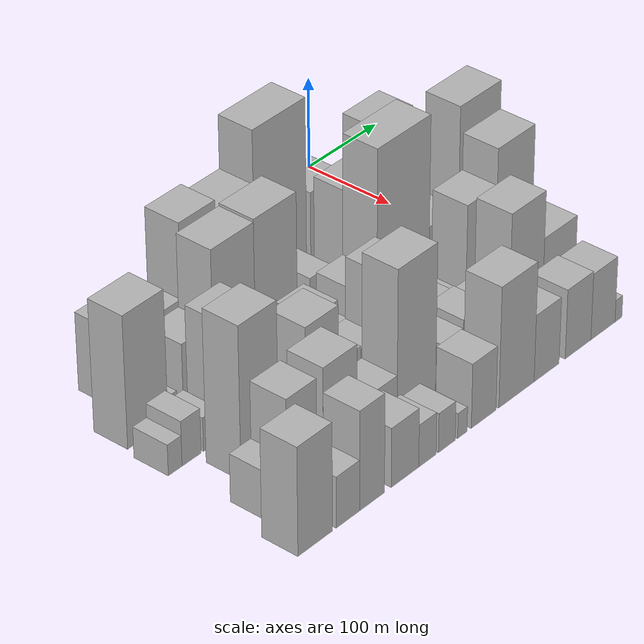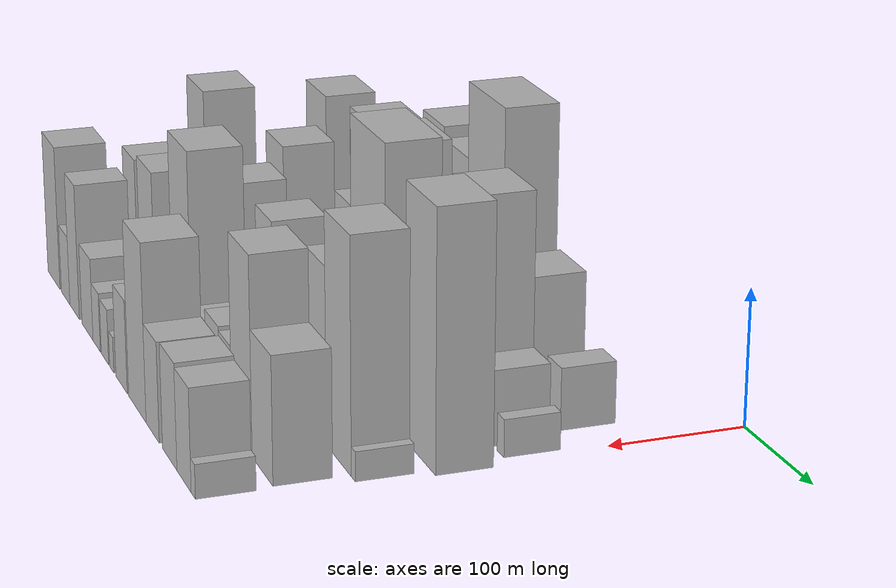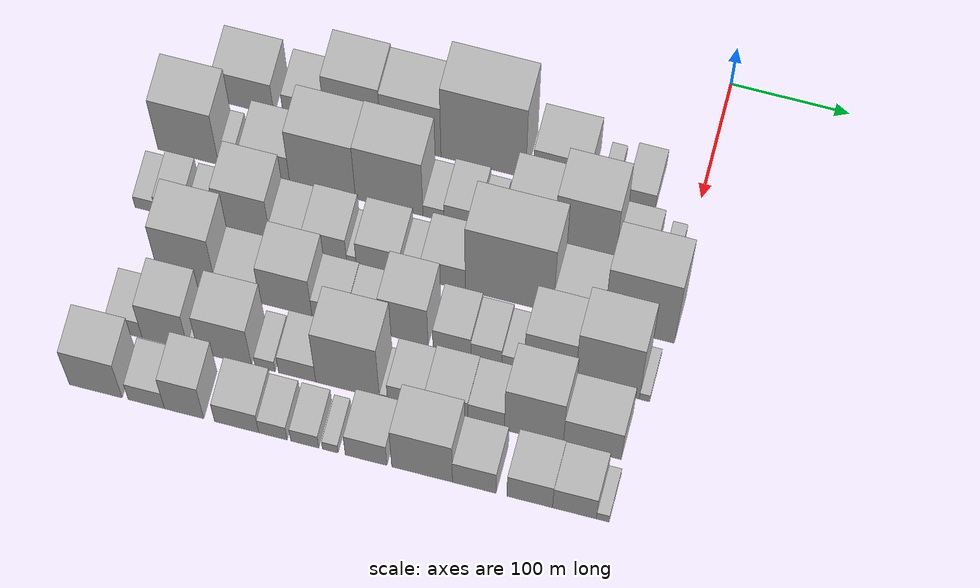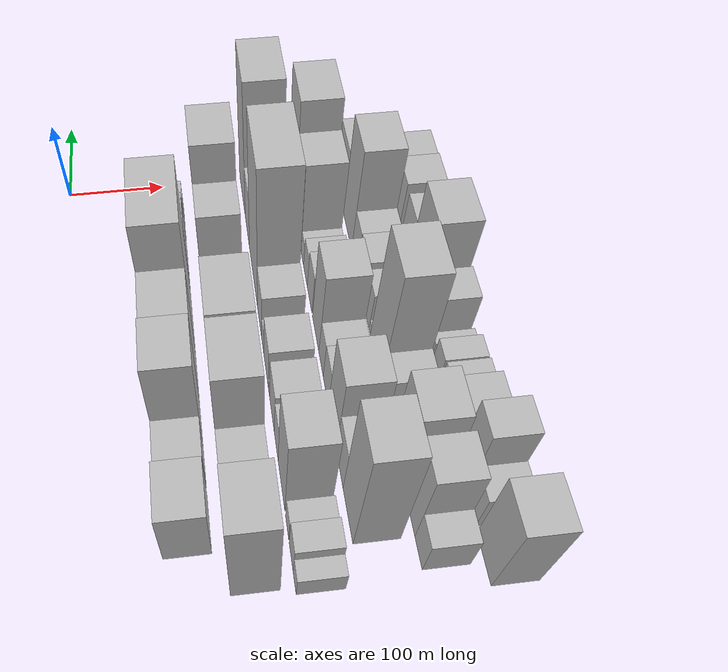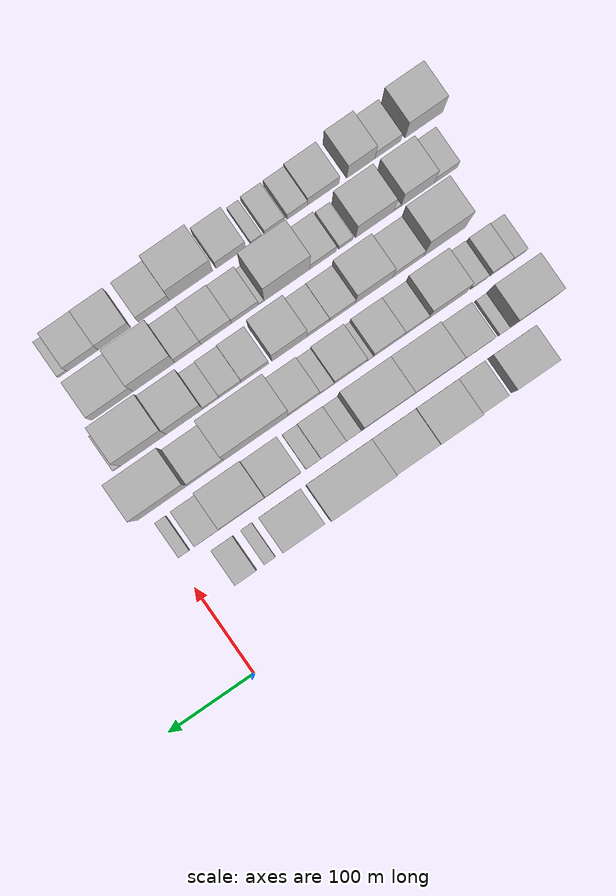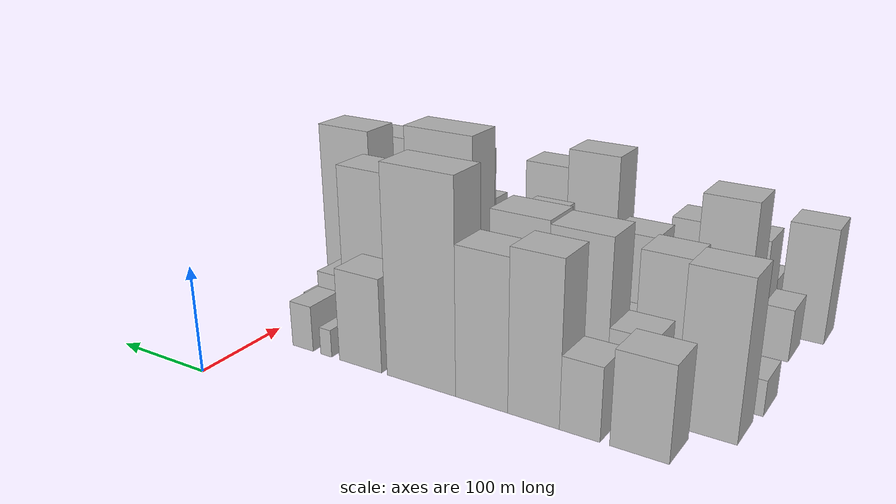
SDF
<sdf version="1.6">
 <world name="default">
  <model name="building_15">
   <static>1</static>
   <pose>100.0000 -380.6242 0 0.000000 0.000000 0.000000</pose>
   <link name="link">
    <pose>0 0 42.00 0 0 0</pose>
    <collision name="collision"><geometry><box><size>40.0000 48.9257 84.0000</size></box></geometry></collision>
    <visual name="visual">
     <cast_shadows>0</cast_shadows>
     <geometry><box><size>40.0000 48.9257 84.0000</size></box></geometry>
     <material>
      <script>
       <uri>model://HANNAS_wall/materials/scripts</uri>
       <uri>model://HANNAS_wall/materials/textures</uri>
       <name>vrc/HANNAS_wall</name>
      </script>
     </material>
    </visual>
   </link>
  </model>
  <model name="building_16">
   <static>1</static>
   <pose>100.0000 -330.4229 0 0.000000 0.000000 0.000000</pose>
   <link name="link">
    <pose>0 0 33.00 0 0 0</pose>
    <collision name="collision"><geometry><box><size>40.0000 35.4769 66.0000</size></box></geometry></collision>
    <visual name="visual">
     <cast_shadows>0</cast_shadows>
     <geometry><box><size>40.0000 35.4769 66.0000</size></box></geometry>
     <material>
      <script>
       <uri>model://HANNAS_wall/materials/scripts</uri>
       <uri>model://HANNAS_wall/materials/textures</uri>
       <name>vrc/HANNAS_wall</name>
      </script>
     </material>
    </visual>
   </link>
  </model>
  <model name="building_17">
   <static>1</static>
   <pose>100.0000 -289.0491 0 0.000000 0.000000 0.000000</pose>
   <link name="link">
    <pose>0 0 73.50 0 0 0</pose>
    <collision name="collision"><geometry><box><size>40.0000 47.2708 147.0000</size></box></geometry></collision>
    <visual name="visual">
     <cast_shadows>0</cast_shadows>
     <geometry><box><size>40.0000 47.2708 147.0000</size></box></geometry>
     <material>
      <script>
       <uri>model://HANNAS_wall/materials/scripts</uri>
       <uri>model://HANNAS_wall/materials/textures</uri>
       <name>vrc/HANNAS_wall</name>
      </script>
     </material>
    </visual>
   </link>
  </model>
  <model name="building_18">
   <static>1</static>
   <pose>100.0000 -240.0989 0 0.000000 0.000000 0.000000</pose>
   <link name="link">
    <pose>0 0 69.00 0 0 0</pose>
    <collision name="collision"><geometry><box><size>40.0000 50.6296 138.0000</size></box></geometry></collision>
    <visual name="visual">
     <cast_shadows>0</cast_shadows>
     <geometry><box><size>40.0000 50.6296 138.0000</size></box></geometry>
     <material>
      <script>
       <uri>model://HANNAS_wall/materials/scripts</uri>
       <uri>model://HANNAS_wall/materials/textures</uri>
       <name>vrc/HANNAS_wall</name>
      </script>
     </material>
    </visual>
   </link>
  </model>
  <model name="building_19">
   <static>1</static>
   <pose>100.0000 -179.0395 0 0.000000 0.000000 0.000000</pose>
   <link name="link">
    <pose>0 0 97.50 0 0 0</pose>
    <collision name="collision"><geometry><box><size>40.0000 71.4891 195.0000</size></box></geometry></collision>
    <visual name="visual">
     <cast_shadows>0</cast_shadows>
     <geometry><box><size>40.0000 71.4891 195.0000</size></box></geometry>
     <material>
      <script>
       <uri>model://HANNAS_wall/materials/scripts</uri>
       <uri>model://HANNAS_wall/materials/textures</uri>
       <name>vrc/HANNAS_wall</name>
      </script>
     </material>
    </visual>
   </link>
  </model>
  <model name="building_20">
   <static>1</static>
   <pose>100.0000 -113.5583 0 0.000000 0.000000 0.000000</pose>
   <link name="link">
    <pose>0 0 45.00 0 0 0</pose>
    <collision name="collision"><geometry><box><size>40.0000 47.4733 90.0000</size></box></geometry></collision>
    <visual name="visual">
     <cast_shadows>0</cast_shadows>
     <geometry><box><size>40.0000 47.4733 90.0000</size></box></geometry>
     <material>
      <script>
       <uri>model://HANNAS_wall/materials/scripts</uri>
       <uri>model://HANNAS_wall/materials/textures</uri>
       <name>vrc/HANNAS_wall</name>
      </script>
     </material>
    </visual>
   </link>
  </model>
  <model name="building_21">
   <static>1</static>
   <pose>100.0000 -74.3829 0 0.000000 0.000000 0.000000</pose>
   <link name="link">
    <pose>0 0 13.50 0 0 0</pose>
    <collision name="collision"><geometry><box><size>40.0000 12.8774 27.0000</size></box></geometry></collision>
    <visual name="visual">
     <cast_shadows>0</cast_shadows>
     <geometry><box><size>40.0000 12.8774 27.0000</size></box></geometry>
     <material>
      <script>
       <uri>model://HANNAS_wall/materials/scripts</uri>
       <uri>model://HANNAS_wall/materials/textures</uri>
       <name>vrc/HANNAS_wall</name>
      </script>
     </material>
    </visual>
   </link>
  </model>
  <model name="building_22">
   <static>1</static>
   <pose>100.0000 -46.6453 0 0.000000 0.000000 0.000000</pose>
   <link name="link">
    <pose>0 0 22.50 0 0 0</pose>
    <collision name="collision"><geometry><box><size>40.0000 24.5978 45.0000</size></box></geometry></collision>
    <visual name="visual">
     <cast_shadows>0</cast_shadows>
     <geometry><box><size>40.0000 24.5978 45.0000</size></box></geometry>
     <material>
      <script>
       <uri>model://HANNAS_wall/materials/scripts</uri>
       <uri>model://HANNAS_wall/materials/textures</uri>
       <name>vrc/HANNAS_wall</name>
      </script>
     </material>
    </visual>
   </link>
  </model>
  <model name="building_56">
   <static>1</static>
   <pose>152.0000 -414.7231 0 0.000000 0.000000 0.000000</pose>
   <link name="link">
    <pose>0 0 70.50 0 0 0</pose>
    <collision name="collision"><geometry><box><size>40.0000 51.4436 141.0000</size></box></geometry></collision>
    <visual name="visual">
     <cast_shadows>0</cast_shadows>
     <geometry><box><size>40.0000 51.4436 141.0000</size></box></geometry>
     <material>
      <script>
       <uri>model://HANNAS_wall/materials/scripts</uri>
       <uri>model://HANNAS_wall/materials/textures</uri>
       <name>vrc/HANNAS_wall</name>
      </script>
     </material>
    </visual>
   </link>
  </model>
  <model name="building_57">
   <static>1</static>
   <pose>152.0000 -382.9502 0 0.000000 0.000000 0.000000</pose>
   <link name="link">
    <pose>0 0 13.50 0 0 0</pose>
    <collision name="collision"><geometry><box><size>40.0000 12.1022 27.0000</size></box></geometry></collision>
    <visual name="visual">
     <cast_shadows>0</cast_shadows>
     <geometry><box><size>40.0000 12.1022 27.0000</size></box></geometry>
     <material>
      <script>
       <uri>model://HANNAS_wall/materials/scripts</uri>
       <uri>model://HANNAS_wall/materials/textures</uri>
       <name>vrc/HANNAS_wall</name>
      </script>
     </material>
    </visual>
   </link>
  </model>
  <model name="building_58">
   <static>1</static>
   <pose>152.0000 -348.8538 0 0.000000 0.000000 0.000000</pose>
   <link name="link">
    <pose>0 0 36.00 0 0 0</pose>
    <collision name="collision"><geometry><box><size>40.0000 40.0906 72.0000</size></box></geometry></collision>
    <visual name="visual">
     <cast_shadows>0</cast_shadows>
     <geometry><box><size>40.0000 40.0906 72.0000</size></box></geometry>
     <material>
      <script>
       <uri>model://HANNAS_wall/materials/scripts</uri>
       <uri>model://HANNAS_wall/materials/textures</uri>
       <name>vrc/HANNAS_wall</name>
      </script>
     </material>
    </visual>
   </link>
  </model>
  <model name="building_59">
   <static>1</static>
   <pose>152.0000 -300.9903 0 0.000000 0.000000 0.000000</pose>
   <link name="link">
    <pose>0 0 75.00 0 0 0</pose>
    <collision name="collision"><geometry><box><size>40.0000 55.6364 150.0000</size></box></geometry></collision>
    <visual name="visual">
     <cast_shadows>0</cast_shadows>
     <geometry><box><size>40.0000 55.6364 150.0000</size></box></geometry>
     <material>
      <script>
       <uri>model://HANNAS_wall/materials/scripts</uri>
       <uri>model://HANNAS_wall/materials/textures</uri>
       <name>vrc/HANNAS_wall</name>
      </script>
     </material>
    </visual>
   </link>
  </model>
  <model name="building_60">
   <static>1</static>
   <pose>152.0000 -244.7220 0 0.000000 0.000000 0.000000</pose>
   <link name="link">
    <pose>0 0 76.50 0 0 0</pose>
    <collision name="collision"><geometry><box><size>40.0000 56.9002 153.0000</size></box></geometry></collision>
    <visual name="visual">
     <cast_shadows>0</cast_shadows>
     <geometry><box><size>40.0000 56.9002 153.0000</size></box></geometry>
     <material>
      <script>
       <uri>model://HANNAS_wall/materials/scripts</uri>
       <uri>model://HANNAS_wall/materials/textures</uri>
       <name>vrc/HANNAS_wall</name>
      </script>
     </material>
    </visual>
   </link>
  </model>
  <model name="building_61">
   <static>1</static>
   <pose>152.0000 -207.4695 0 0.000000 0.000000 0.000000</pose>
   <link name="link">
    <pose>0 0 16.50 0 0 0</pose>
    <collision name="collision"><geometry><box><size>40.0000 17.6048 33.0000</size></box></geometry></collision>
    <visual name="visual">
     <cast_shadows>0</cast_shadows>
     <geometry><box><size>40.0000 17.6048 33.0000</size></box></geometry>
     <material>
      <script>
       <uri>model://HANNAS_wall/materials/scripts</uri>
       <uri>model://HANNAS_wall/materials/textures</uri>
       <name>vrc/HANNAS_wall</name>
      </script>
     </material>
    </visual>
   </link>
  </model>
  <model name="building_62">
   <static>1</static>
   <pose>152.0000 -184.0810 0 0.000000 0.000000 0.000000</pose>
   <link name="link">
    <pose>0 0 25.50 0 0 0</pose>
    <collision name="collision"><geometry><box><size>40.0000 29.1721 51.0000</size></box></geometry></collision>
    <visual name="visual">
     <cast_shadows>0</cast_shadows>
     <geometry><box><size>40.0000 29.1721 51.0000</size></box></geometry>
     <material>
      <script>
       <uri>model://HANNAS_wall/materials/scripts</uri>
       <uri>model://HANNAS_wall/materials/textures</uri>
       <name>vrc/HANNAS_wall</name>
      </script>
     </material>
    </visual>
   </link>
  </model>
  <model name="building_63">
   <static>1</static>
   <pose>152.0000 -160.8736 0 0.000000 0.000000 0.000000</pose>
   <link name="link">
    <pose>0 0 15.00 0 0 0</pose>
    <collision name="collision"><geometry><box><size>40.0000 17.2428 30.0000</size></box></geometry></collision>
    <visual name="visual">
     <cast_shadows>0</cast_shadows>
     <geometry><box><size>40.0000 17.2428 30.0000</size></box></geometry>
     <material>
      <script>
       <uri>model://HANNAS_wall/materials/scripts</uri>
       <uri>model://HANNAS_wall/materials/textures</uri>
       <name>vrc/HANNAS_wall</name>
      </script>
     </material>
    </visual>
   </link>
  </model>
  <model name="building_64">
   <static>1</static>
   <pose>152.0000 -126.0662 0 0.000000 0.000000 0.000000</pose>
   <link name="link">
    <pose>0 0 58.50 0 0 0</pose>
    <collision name="collision"><geometry><box><size>40.0000 40.3719 117.0000</size></box></geometry></collision>
    <visual name="visual">
     <cast_shadows>0</cast_shadows>
     <geometry><box><size>40.0000 40.3719 117.0000</size></box></geometry>
     <material>
      <script>
       <uri>model://HANNAS_wall/materials/scripts</uri>
       <uri>model://HANNAS_wall/materials/textures</uri>
       <name>vrc/HANNAS_wall</name>
      </script>
     </material>
    </visual>
   </link>
  </model>
  <model name="building_65">
   <static>1</static>
   <pose>152.0000 -80.3575 0 0.000000 0.000000 0.000000</pose>
   <link name="link">
    <pose>0 0 82.50 0 0 0</pose>
    <collision name="collision"><geometry><box><size>40.0000 51.0455 165.0000</size></box></geometry></collision>
    <visual name="visual">
     <cast_shadows>0</cast_shadows>
     <geometry><box><size>40.0000 51.0455 165.0000</size></box></geometry>
     <material>
      <script>
       <uri>model://HANNAS_wall/materials/scripts</uri>
       <uri>model://HANNAS_wall/materials/textures</uri>
       <name>vrc/HANNAS_wall</name>
      </script>
     </material>
    </visual>
   </link>
  </model>
  <model name="building_66">
   <static>1</static>
   <pose>152.0000 -39.4649 0 0.000000 0.000000 0.000000</pose>
   <link name="link">
    <pose>0 0 27.00 0 0 0</pose>
    <collision name="collision"><geometry><box><size>40.0000 30.7397 54.0000</size></box></geometry></collision>
    <visual name="visual">
     <cast_shadows>0</cast_shadows>
     <geometry><box><size>40.0000 30.7397 54.0000</size></box></geometry>
     <material>
      <script>
       <uri>model://HANNAS_wall/materials/scripts</uri>
       <uri>model://HANNAS_wall/materials/textures</uri>
       <name>vrc/HANNAS_wall</name>
      </script>
     </material>
    </visual>
   </link>
  </model>
  <model name="building_67">
   <static>1</static>
   <pose>152.0000 -10.9223 0 0.000000 0.000000 0.000000</pose>
   <link name="link">
    <pose>0 0 13.50 0 0 0</pose>
    <collision name="collision"><geometry><box><size>40.0000 12.3455 27.0000</size></box></geometry></collision>
    <visual name="visual">
     <cast_shadows>0</cast_shadows>
     <geometry><box><size>40.0000 12.3455 27.0000</size></box></geometry>
     <material>
      <script>
       <uri>model://HANNAS_wall/materials/scripts</uri>
       <uri>model://HANNAS_wall/materials/textures</uri>
       <name>vrc/HANNAS_wall</name>
      </script>
     </material>
    </visual>
   </link>
  </model>
  <model name="building_103">
   <static>1</static>
   <pose>204.0000 -436.7140 0 0.000000 0.000000 0.000000</pose>
   <link name="link">
    <pose>0 0 16.50 0 0 0</pose>
    <collision name="collision"><geometry><box><size>40.0000 17.4519 33.0000</size></box></geometry></collision>
    <visual name="visual">
     <cast_shadows>0</cast_shadows>
     <geometry><box><size>40.0000 17.4519 33.0000</size></box></geometry>
     <material>
      <script>
       <uri>model://HANNAS_wall/materials/scripts</uri>
       <uri>model://HANNAS_wall/materials/textures</uri>
       <name>vrc/HANNAS_wall</name>
      </script>
     </material>
    </visual>
   </link>
  </model>
  <model name="building_104">
   <static>1</static>
   <pose>204.0000 -415.7940 0 0.000000 0.000000 0.000000</pose>
   <link name="link">
    <pose>0 0 24.00 0 0 0</pose>
    <collision name="collision"><geometry><box><size>40.0000 24.3881 48.0000</size></box></geometry></collision>
    <visual name="visual">
     <cast_shadows>0</cast_shadows>
     <geometry><box><size>40.0000 24.3881 48.0000</size></box></geometry>
     <material>
      <script>
       <uri>model://HANNAS_wall/materials/scripts</uri>
       <uri>model://HANNAS_wall/materials/textures</uri>
       <name>vrc/HANNAS_wall</name>
      </script>
     </material>
    </visual>
   </link>
  </model>
  <model name="building_105">
   <static>1</static>
   <pose>204.0000 -390.7749 0 0.000000 0.000000 0.000000</pose>
   <link name="link">
    <pose>0 0 18.00 0 0 0</pose>
    <collision name="collision"><geometry><box><size>40.0000 19.6501 36.0000</size></box></geometry></collision>
    <visual name="visual">
     <cast_shadows>0</cast_shadows>
     <geometry><box><size>40.0000 19.6501 36.0000</size></box></geometry>
     <material>
      <script>
       <uri>model://HANNAS_wall/materials/scripts</uri>
       <uri>model://HANNAS_wall/materials/textures</uri>
       <name>vrc/HANNAS_wall</name>
      </script>
     </material>
    </visual>
   </link>
  </model>
  <model name="building_106">
   <static>1</static>
   <pose>204.0000 -353.3355 0 0.000000 0.000000 0.000000</pose>
   <link name="link">
    <pose>0 0 61.50 0 0 0</pose>
    <collision name="collision"><geometry><box><size>40.0000 45.2286 123.0000</size></box></geometry></collision>
    <visual name="visual">
     <cast_shadows>0</cast_shadows>
     <geometry><box><size>40.0000 45.2286 123.0000</size></box></geometry>
     <material>
      <script>
       <uri>model://HANNAS_wall/materials/scripts</uri>
       <uri>model://HANNAS_wall/materials/textures</uri>
       <name>vrc/HANNAS_wall</name>
      </script>
     </material>
    </visual>
   </link>
  </model>
  <model name="building_107">
   <static>1</static>
   <pose>204.0000 -316.7567 0 0.000000 0.000000 0.000000</pose>
   <link name="link">
    <pose>0 0 27.00 0 0 0</pose>
    <collision name="collision"><geometry><box><size>40.0000 27.9289 54.0000</size></box></geometry></collision>
    <visual name="visual">
     <cast_shadows>0</cast_shadows>
     <geometry><box><size>40.0000 27.9289 54.0000</size></box></geometry>
     <material>
      <script>
       <uri>model://HANNAS_wall/materials/scripts</uri>
       <uri>model://HANNAS_wall/materials/textures</uri>
       <name>vrc/HANNAS_wall</name>
      </script>
     </material>
    </visual>
   </link>
  </model>
  <model name="building_108">
   <static>1</static>
   <pose>204.0000 -284.8325 0 0.000000 0.000000 0.000000</pose>
   <link name="link">
    <pose>0 0 31.50 0 0 0</pose>
    <collision name="collision"><geometry><box><size>40.0000 35.9197 63.0000</size></box></geometry></collision>
    <visual name="visual">
     <cast_shadows>0</cast_shadows>
     <geometry><box><size>40.0000 35.9197 63.0000</size></box></geometry>
     <material>
      <script>
       <uri>model://HANNAS_wall/materials/scripts</uri>
       <uri>model://HANNAS_wall/materials/textures</uri>
       <name>vrc/HANNAS_wall</name>
      </script>
     </material>
    </visual>
   </link>
  </model>
  <model name="building_109">
   <static>1</static>
   <pose>204.0000 -262.8797 0 0.000000 0.000000 0.000000</pose>
   <link name="link">
    <pose>0 0 9.00 0 0 0</pose>
    <collision name="collision"><geometry><box><size>40.0000 7.9859 18.0000</size></box></geometry></collision>
    <visual name="visual">
     <cast_shadows>0</cast_shadows>
     <geometry><box><size>40.0000 7.9859 18.0000</size></box></geometry>
     <material>
      <script>
       <uri>model://HANNAS_wall/materials/scripts</uri>
       <uri>model://HANNAS_wall/materials/textures</uri>
       <name>vrc/HANNAS_wall</name>
      </script>
     </material>
    </visual>
   </link>
  </model>
  <model name="building_110">
   <static>1</static>
   <pose>204.0000 -240.0083 0 0.000000 0.000000 0.000000</pose>
   <link name="link">
    <pose>0 0 31.50 0 0 0</pose>
    <collision name="collision"><geometry><box><size>40.0000 37.7567 63.0000</size></box></geometry></collision>
    <visual name="visual">
     <cast_shadows>0</cast_shadows>
     <geometry><box><size>40.0000 37.7567 63.0000</size></box></geometry>
     <material>
      <script>
       <uri>model://HANNAS_wall/materials/scripts</uri>
       <uri>model://HANNAS_wall/materials/textures</uri>
       <name>vrc/HANNAS_wall</name>
      </script>
     </material>
    </visual>
   </link>
  </model>
  <model name="building_111">
   <static>1</static>
   <pose>204.0000 -212.5965 0 0.000000 0.000000 0.000000</pose>
   <link name="link">
    <pose>0 0 16.50 0 0 0</pose>
    <collision name="collision"><geometry><box><size>40.0000 17.0671 33.0000</size></box></geometry></collision>
    <visual name="visual">
     <cast_shadows>0</cast_shadows>
     <geometry><box><size>40.0000 17.0671 33.0000</size></box></geometry>
     <material>
      <script>
       <uri>model://HANNAS_wall/materials/scripts</uri>
       <uri>model://HANNAS_wall/materials/textures</uri>
       <name>vrc/HANNAS_wall</name>
      </script>
     </material>
    </visual>
   </link>
  </model>
  <model name="building_112">
   <static>1</static>
   <pose>204.0000 -185.6645 0 0.000000 0.000000 0.000000</pose>
   <link name="link">
    <pose>0 0 33.00 0 0 0</pose>
    <collision name="collision"><geometry><box><size>40.0000 36.7969 66.0000</size></box></geometry></collision>
    <visual name="visual">
     <cast_shadows>0</cast_shadows>
     <geometry><box><size>40.0000 36.7969 66.0000</size></box></geometry>
     <material>
      <script>
       <uri>model://HANNAS_wall/materials/scripts</uri>
       <uri>model://HANNAS_wall/materials/textures</uri>
       <name>vrc/HANNAS_wall</name>
      </script>
     </material>
    </visual>
   </link>
  </model>
  <model name="building_113">
   <static>1</static>
   <pose>204.0000 -130.3661 0 0.000000 0.000000 0.000000</pose>
   <link name="link">
    <pose>0 0 97.50 0 0 0</pose>
    <collision name="collision"><geometry><box><size>40.0000 73.7999 195.0000</size></box></geometry></collision>
    <visual name="visual">
     <cast_shadows>0</cast_shadows>
     <geometry><box><size>40.0000 73.7999 195.0000</size></box></geometry>
     <material>
      <script>
       <uri>model://HANNAS_wall/materials/scripts</uri>
       <uri>model://HANNAS_wall/materials/textures</uri>
       <name>vrc/HANNAS_wall</name>
      </script>
     </material>
    </visual>
   </link>
  </model>
  <model name="building_114">
   <static>1</static>
   <pose>204.0000 -72.4014 0 0.000000 0.000000 0.000000</pose>
   <link name="link">
    <pose>0 0 37.50 0 0 0</pose>
    <collision name="collision"><geometry><box><size>40.0000 42.1295 75.0000</size></box></geometry></collision>
    <visual name="visual">
     <cast_shadows>0</cast_shadows>
     <geometry><box><size>40.0000 42.1295 75.0000</size></box></geometry>
     <material>
      <script>
       <uri>model://HANNAS_wall/materials/scripts</uri>
       <uri>model://HANNAS_wall/materials/textures</uri>
       <name>vrc/HANNAS_wall</name>
      </script>
     </material>
    </visual>
   </link>
  </model>
  <model name="building_115">
   <static>1</static>
   <pose>204.0000 -21.8711 0 0.000000 0.000000 0.000000</pose>
   <link name="link">
    <pose>0 0 91.50 0 0 0</pose>
    <collision name="collision"><geometry><box><size>40.0000 58.9312 183.0000</size></box></geometry></collision>
    <visual name="visual">
     <cast_shadows>0</cast_shadows>
     <geometry><box><size>40.0000 58.9312 183.0000</size></box></geometry>
     <material>
      <script>
       <uri>model://HANNAS_wall/materials/scripts</uri>
       <uri>model://HANNAS_wall/materials/textures</uri>
       <name>vrc/HANNAS_wall</name>
      </script>
     </material>
    </visual>
   </link>
  </model>
  <model name="building_149">
   <static>1</static>
   <pose>256.0000 -386.0818 0 0.000000 0.000000 0.000000</pose>
   <link name="link">
    <pose>0 0 81.00 0 0 0</pose>
    <collision name="collision"><geometry><box><size>40.0000 48.6803 162.0000</size></box></geometry></collision>
    <visual name="visual">
     <cast_shadows>0</cast_shadows>
     <geometry><box><size>40.0000 48.6803 162.0000</size></box></geometry>
     <material>
      <script>
       <uri>model://HANNAS_wall/materials/scripts</uri>
       <uri>model://HANNAS_wall/materials/textures</uri>
       <name>vrc/HANNAS_wall</name>
      </script>
     </material>
    </visual>
   </link>
  </model>
  <model name="building_150">
   <static>1</static>
   <pose>256.0000 -343.6051 0 0.000000 0.000000 0.000000</pose>
   <link name="link">
    <pose>0 0 31.50 0 0 0</pose>
    <collision name="collision"><geometry><box><size>40.0000 36.2732 63.0000</size></box></geometry></collision>
    <visual name="visual">
     <cast_shadows>0</cast_shadows>
     <geometry><box><size>40.0000 36.2732 63.0000</size></box></geometry>
     <material>
      <script>
       <uri>model://HANNAS_wall/materials/scripts</uri>
       <uri>model://HANNAS_wall/materials/textures</uri>
       <name>vrc/HANNAS_wall</name>
      </script>
     </material>
    </visual>
   </link>
  </model>
  <model name="building_151">
   <static>1</static>
   <pose>256.0000 -303.7060 0 0.000000 0.000000 0.000000</pose>
   <link name="link">
    <pose>0 0 57.00 0 0 0</pose>
    <collision name="collision"><geometry><box><size>40.0000 43.5249 114.0000</size></box></geometry></collision>
    <visual name="visual">
     <cast_shadows>0</cast_shadows>
     <geometry><box><size>40.0000 43.5249 114.0000</size></box></geometry>
     <material>
      <script>
       <uri>model://HANNAS_wall/materials/scripts</uri>
       <uri>model://HANNAS_wall/materials/textures</uri>
       <name>vrc/HANNAS_wall</name>
      </script>
     </material>
    </visual>
   </link>
  </model>
  <model name="building_152">
   <static>1</static>
   <pose>256.0000 -266.8123 0 0.000000 0.000000 0.000000</pose>
   <link name="link">
    <pose>0 0 27.00 0 0 0</pose>
    <collision name="collision"><geometry><box><size>40.0000 30.2626 54.0000</size></box></geometry></collision>
    <visual name="visual">
     <cast_shadows>0</cast_shadows>
     <geometry><box><size>40.0000 30.2626 54.0000</size></box></geometry>
     <material>
      <script>
       <uri>model://HANNAS_wall/materials/scripts</uri>
       <uri>model://HANNAS_wall/materials/textures</uri>
       <name>vrc/HANNAS_wall</name>
      </script>
     </material>
    </visual>
   </link>
  </model>
  <model name="building_153">
   <static>1</static>
   <pose>256.0000 -238.4984 0 0.000000 0.000000 0.000000</pose>
   <link name="link">
    <pose>0 0 25.50 0 0 0</pose>
    <collision name="collision"><geometry><box><size>40.0000 26.3652 51.0000</size></box></geometry></collision>
    <visual name="visual">
     <cast_shadows>0</cast_shadows>
     <geometry><box><size>40.0000 26.3652 51.0000</size></box></geometry>
     <material>
      <script>
       <uri>model://HANNAS_wall/materials/scripts</uri>
       <uri>model://HANNAS_wall/materials/textures</uri>
       <name>vrc/HANNAS_wall</name>
      </script>
     </material>
    </visual>
   </link>
  </model>
  <model name="building_154">
   <static>1</static>
   <pose>256.0000 -204.9894 0 0.000000 0.000000 0.000000</pose>
   <link name="link">
    <pose>0 0 58.50 0 0 0</pose>
    <collision name="collision"><geometry><box><size>40.0000 40.6528 117.0000</size></box></geometry></collision>
    <visual name="visual">
     <cast_shadows>0</cast_shadows>
     <geometry><box><size>40.0000 40.6528 117.0000</size></box></geometry>
     <material>
      <script>
       <uri>model://HANNAS_wall/materials/scripts</uri>
       <uri>model://HANNAS_wall/materials/textures</uri>
       <name>vrc/HANNAS_wall</name>
      </script>
     </material>
    </visual>
   </link>
  </model>
  <model name="building_155">
   <static>1</static>
   <pose>256.0000 -164.8865 0 0.000000 0.000000 0.000000</pose>
   <link name="link">
    <pose>0 0 28.50 0 0 0</pose>
    <collision name="collision"><geometry><box><size>40.0000 31.5530 57.0000</size></box></geometry></collision>
    <visual name="visual">
     <cast_shadows>0</cast_shadows>
     <geometry><box><size>40.0000 31.5530 57.0000</size></box></geometry>
     <material>
      <script>
       <uri>model://HANNAS_wall/materials/scripts</uri>
       <uri>model://HANNAS_wall/materials/textures</uri>
       <name>vrc/HANNAS_wall</name>
      </script>
     </material>
    </visual>
   </link>
  </model>
  <model name="building_156">
   <static>1</static>
   <pose>256.0000 -136.1772 0 0.000000 0.000000 0.000000</pose>
   <link name="link">
    <pose>0 0 22.50 0 0 0</pose>
    <collision name="collision"><geometry><box><size>40.0000 25.8655 45.0000</size></box></geometry></collision>
    <visual name="visual">
     <cast_shadows>0</cast_shadows>
     <geometry><box><size>40.0000 25.8655 45.0000</size></box></geometry>
     <material>
      <script>
       <uri>model://HANNAS_wall/materials/scripts</uri>
       <uri>model://HANNAS_wall/materials/textures</uri>
       <name>vrc/HANNAS_wall</name>
      </script>
     </material>
    </visual>
   </link>
  </model>
  <model name="building_157">
   <static>1</static>
   <pose>256.0000 -113.8487 0 0.000000 0.000000 0.000000</pose>
   <link name="link">
    <pose>0 0 16.50 0 0 0</pose>
    <collision name="collision"><geometry><box><size>40.0000 18.7914 33.0000</size></box></geometry></collision>
    <visual name="visual">
     <cast_shadows>0</cast_shadows>
     <geometry><box><size>40.0000 18.7914 33.0000</size></box></geometry>
     <material>
      <script>
       <uri>model://HANNAS_wall/materials/scripts</uri>
       <uri>model://HANNAS_wall/materials/textures</uri>
       <name>vrc/HANNAS_wall</name>
      </script>
     </material>
    </visual>
   </link>
  </model>
  <model name="building_158">
   <static>1</static>
   <pose>256.0000 -83.1990 0 0.000000 0.000000 0.000000</pose>
   <link name="link">
    <pose>0 0 63.00 0 0 0</pose>
    <collision name="collision"><geometry><box><size>40.0000 42.5079 126.0000</size></box></geometry></collision>
    <visual name="visual">
     <cast_shadows>0</cast_shadows>
     <geometry><box><size>40.0000 42.5079 126.0000</size></box></geometry>
     <material>
      <script>
       <uri>model://HANNAS_wall/materials/scripts</uri>
       <uri>model://HANNAS_wall/materials/textures</uri>
       <name>vrc/HANNAS_wall</name>
      </script>
     </material>
    </visual>
   </link>
  </model>
  <model name="building_159">
   <static>1</static>
   <pose>256.0000 -35.2526 0 0.000000 0.000000 0.000000</pose>
   <link name="link">
    <pose>0 0 82.50 0 0 0</pose>
    <collision name="collision"><geometry><box><size>40.0000 53.3848 165.0000</size></box></geometry></collision>
    <visual name="visual">
     <cast_shadows>0</cast_shadows>
     <geometry><box><size>40.0000 53.3848 165.0000</size></box></geometry>
     <material>
      <script>
       <uri>model://HANNAS_wall/materials/scripts</uri>
       <uri>model://HANNAS_wall/materials/textures</uri>
       <name>vrc/HANNAS_wall</name>
      </script>
     </material>
    </visual>
   </link>
  </model>
  <model name="building_160">
   <static>1</static>
   <pose>256.0000 -4.2882 0 0.000000 0.000000 0.000000</pose>
   <link name="link">
    <pose>0 0 10.50 0 0 0</pose>
    <collision name="collision"><geometry><box><size>40.0000 8.5441 21.0000</size></box></geometry></collision>
    <visual name="visual">
     <cast_shadows>0</cast_shadows>
     <geometry><box><size>40.0000 8.5441 21.0000</size></box></geometry>
     <material>
      <script>
       <uri>model://HANNAS_wall/materials/scripts</uri>
       <uri>model://HANNAS_wall/materials/textures</uri>
       <name>vrc/HANNAS_wall</name>
      </script>
     </material>
    </visual>
   </link>
  </model>
  <model name="building_201">
   <static>1</static>
   <pose>308.0000 -423.9676 0 0.000000 0.000000 0.000000</pose>
   <link name="link">
    <pose>0 0 25.50 0 0 0</pose>
    <collision name="collision"><geometry><box><size>40.0000 27.3954 51.0000</size></box></geometry></collision>
    <visual name="visual">
     <cast_shadows>0</cast_shadows>
     <geometry><box><size>40.0000 27.3954 51.0000</size></box></geometry>
     <material>
      <script>
       <uri>model://HANNAS_wall/materials/scripts</uri>
       <uri>model://HANNAS_wall/materials/textures</uri>
       <name>vrc/HANNAS_wall</name>
      </script>
     </material>
    </visual>
   </link>
  </model>
  <model name="building_202">
   <static>1</static>
   <pose>308.0000 -390.8999 0 0.000000 0.000000 0.000000</pose>
   <link name="link">
    <pose>0 0 55.50 0 0 0</pose>
    <collision name="collision"><geometry><box><size>40.0000 38.7400 111.0000</size></box></geometry></collision>
    <visual name="visual">
     <cast_shadows>0</cast_shadows>
     <geometry><box><size>40.0000 38.7400 111.0000</size></box></geometry>
     <material>
      <script>
       <uri>model://HANNAS_wall/materials/scripts</uri>
       <uri>model://HANNAS_wall/materials/textures</uri>
       <name>vrc/HANNAS_wall</name>
      </script>
     </material>
    </visual>
   </link>
  </model>
  <model name="building_203">
   <static>1</static>
   <pose>308.0000 -367.3662 0 0.000000 0.000000 0.000000</pose>
   <link name="link">
    <pose>0 0 9.00 0 0 0</pose>
    <collision name="collision"><geometry><box><size>40.0000 8.3275 18.0000</size></box></geometry></collision>
    <visual name="visual">
     <cast_shadows>0</cast_shadows>
     <geometry><box><size>40.0000 8.3275 18.0000</size></box></geometry>
     <material>
      <script>
       <uri>model://HANNAS_wall/materials/scripts</uri>
       <uri>model://HANNAS_wall/materials/textures</uri>
       <name>vrc/HANNAS_wall</name>
      </script>
     </material>
    </visual>
   </link>
  </model>
  <model name="building_204">
   <static>1</static>
   <pose>308.0000 -340.8536 0 0.000000 0.000000 0.000000</pose>
   <link name="link">
    <pose>0 0 58.50 0 0 0</pose>
    <collision name="collision"><geometry><box><size>40.0000 44.6977 117.0000</size></box></geometry></collision>
    <visual name="visual">
     <cast_shadows>0</cast_shadows>
     <geometry><box><size>40.0000 44.6977 117.0000</size></box></geometry>
     <material>
      <script>
       <uri>model://HANNAS_wall/materials/scripts</uri>
       <uri>model://HANNAS_wall/materials/textures</uri>
       <name>vrc/HANNAS_wall</name>
      </script>
     </material>
    </visual>
   </link>
  </model>
  <model name="building_205">
   <static>1</static>
   <pose>308.0000 -307.1774 0 0.000000 0.000000 0.000000</pose>
   <link name="link">
    <pose>0 0 16.50 0 0 0</pose>
    <collision name="collision"><geometry><box><size>40.0000 16.6547 33.0000</size></box></geometry></collision>
    <visual name="visual">
     <cast_shadows>0</cast_shadows>
     <geometry><box><size>40.0000 16.6547 33.0000</size></box></geometry>
     <material>
      <script>
       <uri>model://HANNAS_wall/materials/scripts</uri>
       <uri>model://HANNAS_wall/materials/textures</uri>
       <name>vrc/HANNAS_wall</name>
      </script>
     </material>
    </visual>
   </link>
  </model>
  <model name="building_206">
   <static>1</static>
   <pose>308.0000 -280.2914 0 0.000000 0.000000 0.000000</pose>
   <link name="link">
    <pose>0 0 27.00 0 0 0</pose>
    <collision name="collision"><geometry><box><size>40.0000 31.1174 54.0000</size></box></geometry></collision>
    <visual name="visual">
     <cast_shadows>0</cast_shadows>
     <geometry><box><size>40.0000 31.1174 54.0000</size></box></geometry>
     <material>
      <script>
       <uri>model://HANNAS_wall/materials/scripts</uri>
       <uri>model://HANNAS_wall/materials/textures</uri>
       <name>vrc/HANNAS_wall</name>
      </script>
     </material>
    </visual>
   </link>
  </model>
  <model name="building_207">
   <static>1</static>
   <pose>308.0000 -238.1318 0 0.000000 0.000000 0.000000</pose>
   <link name="link">
    <pose>0 0 82.50 0 0 0</pose>
    <collision name="collision"><geometry><box><size>40.0000 53.2017 165.0000</size></box></geometry></collision>
    <visual name="visual">
     <cast_shadows>0</cast_shadows>
     <geometry><box><size>40.0000 53.2017 165.0000</size></box></geometry>
     <material>
      <script>
       <uri>model://HANNAS_wall/materials/scripts</uri>
       <uri>model://HANNAS_wall/materials/textures</uri>
       <name>vrc/HANNAS_wall</name>
      </script>
     </material>
    </visual>
   </link>
  </model>
  <model name="building_208">
   <static>1</static>
   <pose>308.0000 -208.2186 0 0.000000 0.000000 0.000000</pose>
   <link name="link">
    <pose>0 0 7.50 0 0 0</pose>
    <collision name="collision"><geometry><box><size>40.0000 6.6248 15.0000</size></box></geometry></collision>
    <visual name="visual">
     <cast_shadows>0</cast_shadows>
     <geometry><box><size>40.0000 6.6248 15.0000</size></box></geometry>
     <material>
      <script>
       <uri>model://HANNAS_wall/materials/scripts</uri>
       <uri>model://HANNAS_wall/materials/textures</uri>
       <name>vrc/HANNAS_wall</name>
      </script>
     </material>
    </visual>
   </link>
  </model>
  <model name="building_209">
   <static>1</static>
   <pose>308.0000 -189.2360 0 0.000000 0.000000 0.000000</pose>
   <link name="link">
    <pose>0 0 27.00 0 0 0</pose>
    <collision name="collision"><geometry><box><size>40.0000 31.3403 54.0000</size></box></geometry></collision>
    <visual name="visual">
     <cast_shadows>0</cast_shadows>
     <geometry><box><size>40.0000 31.3403 54.0000</size></box></geometry>
     <material>
      <script>
       <uri>model://HANNAS_wall/materials/scripts</uri>
       <uri>model://HANNAS_wall/materials/textures</uri>
       <name>vrc/HANNAS_wall</name>
      </script>
     </material>
    </visual>
   </link>
  </model>
  <model name="building_210">
   <static>1</static>
   <pose>308.0000 -155.7589 0 0.000000 0.000000 0.000000</pose>
   <link name="link">
    <pose>0 0 31.50 0 0 0</pose>
    <collision name="collision"><geometry><box><size>40.0000 35.6140 63.0000</size></box></geometry></collision>
    <visual name="visual">
     <cast_shadows>0</cast_shadows>
     <geometry><box><size>40.0000 35.6140 63.0000</size></box></geometry>
     <material>
      <script>
       <uri>model://HANNAS_wall/materials/scripts</uri>
       <uri>model://HANNAS_wall/materials/textures</uri>
       <name>vrc/HANNAS_wall</name>
      </script>
     </material>
    </visual>
   </link>
  </model>
  <model name="building_211">
   <static>1</static>
   <pose>308.0000 -122.7622 0 0.000000 0.000000 0.000000</pose>
   <link name="link">
    <pose>0 0 30.00 0 0 0</pose>
    <collision name="collision"><geometry><box><size>40.0000 30.3793 60.0000</size></box></geometry></collision>
    <visual name="visual">
     <cast_shadows>0</cast_shadows>
     <geometry><box><size>40.0000 30.3793 60.0000</size></box></geometry>
     <material>
      <script>
       <uri>model://HANNAS_wall/materials/scripts</uri>
       <uri>model://HANNAS_wall/materials/textures</uri>
       <name>vrc/HANNAS_wall</name>
      </script>
     </material>
    </visual>
   </link>
  </model>
  <model name="building_212">
   <static>1</static>
   <pose>308.0000 -83.1535 0 0.000000 0.000000 0.000000</pose>
   <link name="link">
    <pose>0 0 70.50 0 0 0</pose>
    <collision name="collision"><geometry><box><size>40.0000 48.8381 141.0000</size></box></geometry></collision>
    <visual name="visual">
     <cast_shadows>0</cast_shadows>
     <geometry><box><size>40.0000 48.8381 141.0000</size></box></geometry>
     <material>
      <script>
       <uri>model://HANNAS_wall/materials/scripts</uri>
       <uri>model://HANNAS_wall/materials/textures</uri>
       <name>vrc/HANNAS_wall</name>
      </script>
     </material>
    </visual>
   </link>
  </model>
  <model name="building_213">
   <static>1</static>
   <pose>308.0000 -34.6208 0 0.000000 0.000000 0.000000</pose>
   <link name="link">
    <pose>0 0 45.00 0 0 0</pose>
    <collision name="collision"><geometry><box><size>40.0000 48.2273 90.0000</size></box></geometry></collision>
    <visual name="visual">
     <cast_shadows>0</cast_shadows>
     <geometry><box><size>40.0000 48.2273 90.0000</size></box></geometry>
     <material>
      <script>
       <uri>model://HANNAS_wall/materials/scripts</uri>
       <uri>model://HANNAS_wall/materials/textures</uri>
       <name>vrc/HANNAS_wall</name>
      </script>
     </material>
    </visual>
   </link>
  </model>
  <model name="building_248">
   <static>1</static>
   <pose>360.0000 -434.5935 0 0.000000 0.000000 0.000000</pose>
   <link name="link">
    <pose>0 0 57.00 0 0 0</pose>
    <collision name="collision"><geometry><box><size>40.0000 44.2057 114.0000</size></box></geometry></collision>
    <visual name="visual">
     <cast_shadows>0</cast_shadows>
     <geometry><box><size>40.0000 44.2057 114.0000</size></box></geometry>
     <material>
      <script>
       <uri>model://HANNAS_wall/materials/scripts</uri>
       <uri>model://HANNAS_wall/materials/textures</uri>
       <name>vrc/HANNAS_wall</name>
      </script>
     </material>
    </visual>
   </link>
  </model>
  <model name="building_249">
   <static>1</static>
   <pose>360.0000 -392.3069 0 0.000000 0.000000 0.000000</pose>
   <link name="link">
    <pose>0 0 27.00 0 0 0</pose>
    <collision name="collision"><geometry><box><size>40.0000 30.3675 54.0000</size></box></geometry></collision>
    <visual name="visual">
     <cast_shadows>0</cast_shadows>
     <geometry><box><size>40.0000 30.3675 54.0000</size></box></geometry>
     <material>
      <script>
       <uri>model://HANNAS_wall/materials/scripts</uri>
       <uri>model://HANNAS_wall/materials/textures</uri>
       <name>vrc/HANNAS_wall</name>
      </script>
     </material>
    </visual>
   </link>
  </model>
  <model name="building_250">
   <static>1</static>
   <pose>360.0000 -360.6833 0 0.000000 0.000000 0.000000</pose>
   <link name="link">
    <pose>0 0 52.50 0 0 0</pose>
    <collision name="collision"><geometry><box><size>40.0000 32.8797 105.0000</size></box></geometry></collision>
    <visual name="visual">
     <cast_shadows>0</cast_shadows>
     <geometry><box><size>40.0000 32.8797 105.0000</size></box></geometry>
     <material>
      <script>
       <uri>model://HANNAS_wall/materials/scripts</uri>
       <uri>model://HANNAS_wall/materials/textures</uri>
       <name>vrc/HANNAS_wall</name>
      </script>
     </material>
    </visual>
   </link>
  </model>
  <model name="building_251">
   <static>1</static>
   <pose>360.0000 -316.8155 0 0.000000 0.000000 0.000000</pose>
   <link name="link">
    <pose>0 0 31.50 0 0 0</pose>
    <collision name="collision"><geometry><box><size>40.0000 36.8559 63.0000</size></box></geometry></collision>
    <visual name="visual">
     <cast_shadows>0</cast_shadows>
     <geometry><box><size>40.0000 36.8559 63.0000</size></box></geometry>
     <material>
      <script>
       <uri>model://HANNAS_wall/materials/scripts</uri>
       <uri>model://HANNAS_wall/materials/textures</uri>
       <name>vrc/HANNAS_wall</name>
      </script>
     </material>
    </visual>
   </link>
  </model>
  <model name="building_252">
   <static>1</static>
   <pose>360.0000 -286.5096 0 0.000000 0.000000 0.000000</pose>
   <link name="link">
    <pose>0 0 22.50 0 0 0</pose>
    <collision name="collision"><geometry><box><size>40.0000 23.7560 45.0000</size></box></geometry></collision>
    <visual name="visual">
     <cast_shadows>0</cast_shadows>
     <geometry><box><size>40.0000 23.7560 45.0000</size></box></geometry>
     <material>
      <script>
       <uri>model://HANNAS_wall/materials/scripts</uri>
       <uri>model://HANNAS_wall/materials/textures</uri>
       <name>vrc/HANNAS_wall</name>
      </script>
     </material>
    </visual>
   </link>
  </model>
  <model name="building_253">
   <static>1</static>
   <pose>360.0000 -259.9535 0 0.000000 0.000000 0.000000</pose>
   <link name="link">
    <pose>0 0 21.00 0 0 0</pose>
    <collision name="collision"><geometry><box><size>40.0000 23.3560 42.0000</size></box></geometry></collision>
    <visual name="visual">
     <cast_shadows>0</cast_shadows>
     <geometry><box><size>40.0000 23.3560 42.0000</size></box></geometry>
     <material>
      <script>
       <uri>model://HANNAS_wall/materials/scripts</uri>
       <uri>model://HANNAS_wall/materials/textures</uri>
       <name>vrc/HANNAS_wall</name>
      </script>
     </material>
    </visual>
   </link>
  </model>
  <model name="building_254">
   <static>1</static>
   <pose>360.0000 -238.7318 0 0.000000 0.000000 0.000000</pose>
   <link name="link">
    <pose>0 0 13.50 0 0 0</pose>
    <collision name="collision"><geometry><box><size>40.0000 13.0875 27.0000</size></box></geometry></collision>
    <visual name="visual">
     <cast_shadows>0</cast_shadows>
     <geometry><box><size>40.0000 13.0875 27.0000</size></box></geometry>
     <material>
      <script>
       <uri>model://HANNAS_wall/materials/scripts</uri>
       <uri>model://HANNAS_wall/materials/textures</uri>
       <name>vrc/HANNAS_wall</name>
      </script>
     </material>
    </visual>
   </link>
  </model>
  <model name="building_255">
   <static>1</static>
   <pose>360.0000 -208.8972 0 0.000000 0.000000 0.000000</pose>
   <link name="link">
    <pose>0 0 34.50 0 0 0</pose>
    <collision name="collision"><geometry><box><size>40.0000 34.5818 69.0000</size></box></geometry></collision>
    <visual name="visual">
     <cast_shadows>0</cast_shadows>
     <geometry><box><size>40.0000 34.5818 69.0000</size></box></geometry>
     <material>
      <script>
       <uri>model://HANNAS_wall/materials/scripts</uri>
       <uri>model://HANNAS_wall/materials/textures</uri>
       <name>vrc/HANNAS_wall</name>
      </script>
     </material>
    </visual>
   </link>
  </model>
  <model name="building_256">
   <static>1</static>
   <pose>360.0000 -162.4125 0 0.000000 0.000000 0.000000</pose>
   <link name="link">
    <pose>0 0 64.50 0 0 0</pose>
    <collision name="collision"><geometry><box><size>40.0000 50.3877 129.0000</size></box></geometry></collision>
    <visual name="visual">
     <cast_shadows>0</cast_shadows>
     <geometry><box><size>40.0000 50.3877 129.0000</size></box></geometry>
     <material>
      <script>
       <uri>model://HANNAS_wall/materials/scripts</uri>
       <uri>model://HANNAS_wall/materials/textures</uri>
       <name>vrc/HANNAS_wall</name>
      </script>
     </material>
    </visual>
   </link>
  </model>
  <model name="building_257">
   <static>1</static>
   <pose>360.0000 -119.1372 0 0.000000 0.000000 0.000000</pose>
   <link name="link">
    <pose>0 0 36.00 0 0 0</pose>
    <collision name="collision"><geometry><box><size>40.0000 36.1628 72.0000</size></box></geometry></collision>
    <visual name="visual">
     <cast_shadows>0</cast_shadows>
     <geometry><box><size>40.0000 36.1628 72.0000</size></box></geometry>
     <material>
      <script>
       <uri>model://HANNAS_wall/materials/scripts</uri>
       <uri>model://HANNAS_wall/materials/textures</uri>
       <name>vrc/HANNAS_wall</name>
      </script>
     </material>
    </visual>
   </link>
  </model>
  <model name="building_258">
   <static>1</static>
   <pose>360.0000 -73.1337 0 0.000000 0.000000 0.000000</pose>
   <link name="link">
    <pose>0 0 37.50 0 0 0</pose>
    <collision name="collision"><geometry><box><size>40.0000 37.8443 75.0000</size></box></geometry></collision>
    <visual name="visual">
     <cast_shadows>0</cast_shadows>
     <geometry><box><size>40.0000 37.8443 75.0000</size></box></geometry>
     <material>
      <script>
       <uri>model://HANNAS_wall/materials/scripts</uri>
       <uri>model://HANNAS_wall/materials/textures</uri>
       <name>vrc/HANNAS_wall</name>
      </script>
     </material>
    </visual>
   </link>
  </model>
  <model name="building_259">
   <static>1</static>
   <pose>360.0000 -36.1358 0 0.000000 0.000000 0.000000</pose>
   <link name="link">
    <pose>0 0 36.00 0 0 0</pose>
    <collision name="collision"><geometry><box><size>40.0000 36.1515 72.0000</size></box></geometry></collision>
    <visual name="visual">
     <cast_shadows>0</cast_shadows>
     <geometry><box><size>40.0000 36.1515 72.0000</size></box></geometry>
     <material>
      <script>
       <uri>model://HANNAS_wall/materials/scripts</uri>
       <uri>model://HANNAS_wall/materials/textures</uri>
       <name>vrc/HANNAS_wall</name>
      </script>
     </material>
    </visual>
   </link>
  </model>
  <model name="building_260">
   <static>1</static>
   <pose>360.0000 -12.7818 0 0.000000 0.000000 0.000000</pose>
   <link name="link">
    <pose>0 0 12.00 0 0 0</pose>
    <collision name="collision"><geometry><box><size>40.0000 10.5565 24.0000</size></box></geometry></collision>
    <visual name="visual">
     <cast_shadows>0</cast_shadows>
     <geometry><box><size>40.0000 10.5565 24.0000</size></box></geometry>
     <material>
      <script>
       <uri>model://HANNAS_wall/materials/scripts</uri>
       <uri>model://HANNAS_wall/materials/textures</uri>
       <name>vrc/HANNAS_wall</name>
      </script>
     </material>
    </visual>
   </link>
  </model>
 </world>
</sdf>
